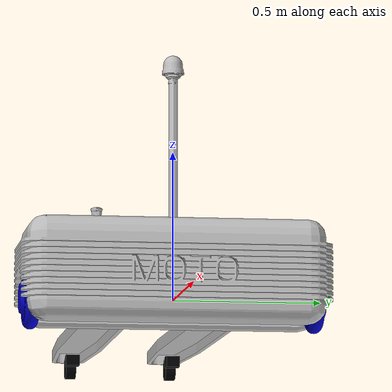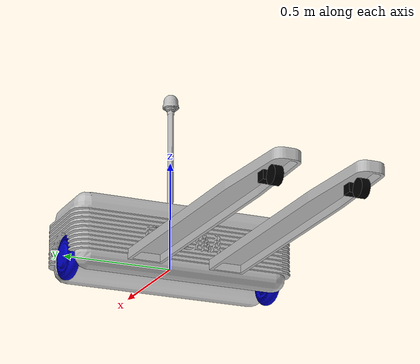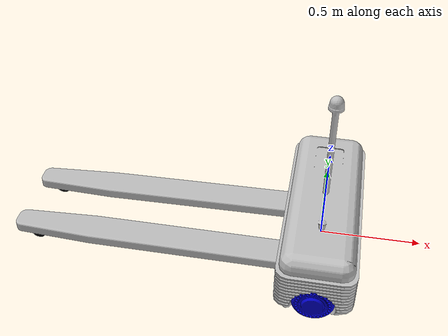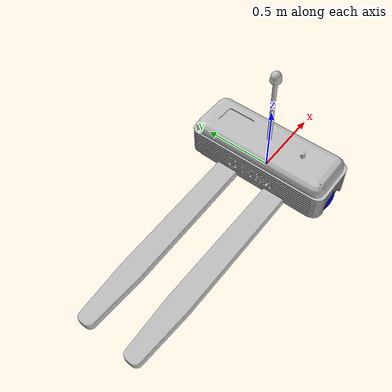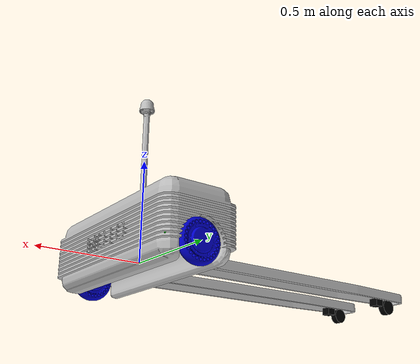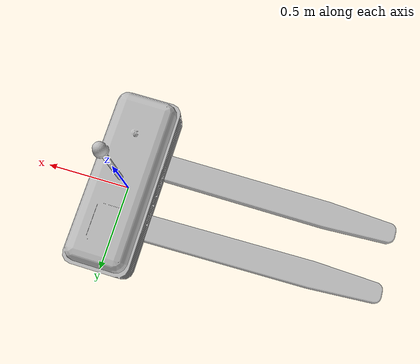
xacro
<?xml version="1.0"?>
<robot name="amr" xmlns:xacro="http://www.ros.org/wiki/xacro">

    <!-- Wheels property -->
    <xacro:property name="cwm" value="0.5" />                                   <!-- cwm: caster wheel mass,     [kg] -->
    <xacro:property name="cwd" value="0.080" />                                 <!-- cwd: caster wheel diameter, [m]  -->
    <xacro:property name="cwr" value="${cwd/2}" />                              <!-- cwr: caster wheel radius,   [m]  -->
    <xacro:property name="cwo" value="0.080" />                                 <!-- cwo: caster wheel offset,   [m]  default value: 0.047-->
    <xacro:property name="cwt" value="0.037" />                                 <!-- cwt: caster wheel tread,    [m]  -->
    <xacro:property name="cwh" value="${cwd}" />                                 <!-- cwt: caster wheel height,   [m]  -->
    <xacro:property name="mu1" value="10000" />                                 <!-- mu1: static friction coefficient,   [/]  -->
    <xacro:property name="mu2" value="10000" />                                 <!-- mu1: dynamic friction coefficient,   [/]  -->
    <xacro:property name="kp" value="10" />                                     <!-- kp: stiffness coefficient,   [N/m?]  -->
    <xacro:property name="kd" value="10" />                                     <!-- kp: stiffness coefficient,   [N/m?]  -->

    <xacro:property name="mu3" value="10" />                                    <!-- mu1: static friction coefficient,   [/]  -->
    <xacro:property name="mu4" value="10" />                                    <!-- mu1: dynamic friction coefficient,   [/]  -->
    <xacro:property name="kp2" value="10000" />                                 <!-- kp: stiffness coefficient,   [N/m?]  -->
    <xacro:property name="kd2" value="10000" />                                 <!-- kp: stiffness coefficient,   [N/m?]  -->

    <xacro:property name="cw_ixx" value="${(cwm/12.0)*(3*cwr*cwr+cwt*cwt)}" />  <!-- cw_ixx: caster wheel inertia x axis, [kgm^2]  -->
    <xacro:property name="cw_iyy" value="${cw_ixx}" />                          <!-- cw_iyy: caster wheel inertia y axis, [kgm^2]  -->
    <xacro:property name="cw_izz" value="${(cwm*cwr*cwr)/2.0}" />               <!-- cw_izz: caster wheel inertia z axis, [kgm^2]  -->

    <xacro:property name="dwm" value="0.6" />                                   <!-- dwm: driving wheel mass, [kg] -->
    <xacro:property name="dwd" value="0.200" />                                 <!-- dwd: driving wheel diameter, [m]  -->
    <xacro:property name="dwr" value="${dwd/2}" />                              <!-- dwr: driving wheel radius, [m]  -->
    <xacro:property name="dwt" value="0.044" />                                 <!-- dwt: driving wheel tread, [m]  -->

    <xacro:property name="dw_ixx" value="${(dwm/12.0)*(3*dwr*dwr+dwt*dwt)}" />  <!-- dw_ixx: driving wheel inertia x axis, [kgm^2]  -->
    <xacro:property name="dw_iyy" value="${dw_ixx}" />                          <!-- dw_iyy: driving wheel inertia y axis, [kgm^2]  -->
    <xacro:property name="dw_izz" value="${(dwm*dwr*dwr)/2.0}" />               <!-- dw_izz: driving wheel inertia z axis, [kgm^2]  -->

    <!-- chassis property -->
    <xacro:property name="cm" value="70.0" />                                   <!-- cm: chassis mass,                       [kg] -->
    <xacro:property name="clod" value="0.350" />                                <!-- clod: chassis longitudinal dimension,   [m] -->
    <xacro:property name="clad" value="1.00" />                                <!-- clad: chassis lateral dimension,        [m] -->
    <xacro:property name="ch" value="0.050" />                                  <!-- ch: chassis height,                     [m] -->
    <xacro:property name="ccmp" value="0.1" />                                  <!-- ch: chassis center of mass position,  [m] -->

    <xacro:property name="c_ixx" value="${(cm/12.0)*(clad*clad+ch*ch)}" />      <!-- c_ixx: chassis inertia x axis, [kgm^2]  -->
    <xacro:property name="c_iyy" value="${(cm/12.0)*(clod*clod+ch*ch)}" />      <!-- c_iyy: chassis inertia y axis, [kgm^2]  -->
    <xacro:property name="c_izz" value="${(cm/12.0)*(clod*clod+clad*clad)}" />  <!-- c_izz: chassis inertia z axis, [kgm^2]  -->

    <!-- caster_wheel_link property -->
    <xacro:property name="cwlm" value="0.050" />                                  <!-- cwlm: caster wheel link mass,      [kg] -->
    <xacro:property name="cwlh" value="${(cwh-cwr)}" />                           <!-- cwlh: caster wheel link height,    [m]  -->
    <xacro:property name="cfwp" value="-1.4" />                                    <!-- cfwp: caster front wheel position, [m]  -->

    <!-- forks_link property -->
    <xacro:property name="flm" value="10" />                                  <!-- flm:  fork link mass, [kg] -->
    <xacro:property name="flod" value="1.2" />                                <!-- flod: fork longitudinal dimension,   [m] -->
    <xacro:property name="flad" value="0.160" />                              <!-- flad: fork lateral dimension,        [m] -->
    <xacro:property name="fh" value="0.040" />                                <!-- fh: fork height,                     [m] -->
    <xacro:property name="fup" value="0.120" />                               <!-- fup: fork upper position,            [m] -->
    <xacro:property name="flp" value="0.0" />                                 <!-- flp: fork lower position,            [m] -->
    <xacro:property name="ftr" value="1.0" />                                 <!-- ftr: fork trasmission reduction,     [/] -->
    <xacro:property name="fev" value="0.05" />                                <!-- ftr: fork elevation velocity         [m/s] -->

    <xacro:property name="f_ixx" value="${(flm/12.0)*(flad*flad+ch*fh)}" />      <!-- f_ixx: fork inertia x axis, [kgm^2]  -->
    <xacro:property name="f_iyy" value="${(flm/12.0)*(flod*flod+ch*fh)}" />      <!-- f_iyy: fork inertia y axis, [kgm^2]  -->
    <xacro:property name="f_izz" value="${(flm/12.0)*(flod*flod+flad*flad)}" />  <!-- f_izz: fork inertia z axis, [kgm^2]  -->

    <!-- laserscanner_link property -->
    <xacro:property name="flsh" value="0" />                                <!-- flsh: front laserscanner height,   [m] -->

    <xacro:macro name="caster_wheel_link" params="number colour">

        <link name="caster_wheel_M${number}_link">

            <visual>
                <origin xyz="0 0 0" rpy="0 0 0"/>
                <geometry>
                    <box size="0.050 0.050 ${cwlh}"/>
                </geometry>
                <material name="black"/>
            </visual>

            <collision>
                <origin xyz="0 0 0" rpy="0 0 0"/>
                <geometry>
                    <box size="0.050 0.050 ${cwlh}"/>
                </geometry>
            </collision>

            <inertial>
                <origin xyz="0 0 0" rpy="0 0 0"/>
                <mass value="${cwlm}" />
                <inertia ixx="0" ixy="0.0" ixz="0.0" iyy="0" iyz="0.0" izz="0"/>
            </inertial>

        </link>

        <gazebo reference="caster_wheel_M${number}_link">
            <kp>10000.0</kp>
            <kd>10000.0</kd>
            <mu1>10.0</mu1>
            <mu2>10.0</mu2>
            <material>Gazebo/Black</material>
        </gazebo>

        <link name="wheel_M${number}_link">

            <visual>
                <origin xyz="0 0 0" rpy="0 0 0"/>
                <geometry>
                    <cylinder length="${cwt}" radius="${cwr}"/>
                </geometry>
                <material name="black"/>
            </visual>

            <collision>
                <origin xyz="0 0 0" rpy="0 0 0"/>
                <geometry>
                    <cylinder length="${cwt}" radius="${cwr}"/>
                </geometry>
            </collision>

            <inertial>
                <origin xyz="0 0 0" rpy="0 0 0"/>
                <mass value="${cwm}" />
                <inertia ixx="${cw_ixx}" ixy="0.0" ixz="0.0" iyy="${cw_iyy}" iyz="0.0" izz="${cw_izz}"/>
            </inertial>

        </link>

        <gazebo reference="wheel_M${number}_link">
            <kp>5000.0</kp>
            <kd>5000.0</kd>
            <mu1>30.0</mu1>
            <mu2>30.0</mu2>
            <material>Gazebo/Black</material>
        </gazebo>

        <joint name="caster_wheel_M${number}_wheel_M${number}_joint" type="continuous">
            <parent link="caster_wheel_M${number}_link"/>
            <child link="wheel_M${number}_link"/>
            <origin xyz="${cwo} 0 ${-cwlh/2}" rpy="1.570796 0 0"/>
            <limit  effort="1.0" velocity="0.005"/>
            <axis xyz="0 0 1"/>
        </joint>

    </xacro:macro>

    <xacro:macro name="driving_wheel_link" params="number colour">

        <link name="driving_wheel_M${number}_link">

            <visual>
                <origin xyz="0 0 0" rpy="0 0 0"/>
                <geometry>
                    <mesh filename="package://amr_description/models/meshes/amr_wheel.dae"/>
                </geometry>
                <material name="blue"/>
            </visual>

            <collision>
                <origin xyz="0 0 0" rpy="0 0 0"/>
                <geometry>
                    <cylinder length="${dwt}" radius="${dwr}"/>
                </geometry>
            </collision>

            <inertial>
                <origin xyz="0 0 0" rpy="0 0 0"/>
                <mass value="${dwm}" />
                <inertia ixx="${dw_ixx}" ixy="0.0" ixz="0.0" iyy="${dw_iyy}" iyz="0.0" izz="${dw_izz}"/>
            </inertial>

        </link>

        <gazebo reference="driving_wheel_M${number}_link">
            <kp>25000.0</kp>
            <kd>25000.0</kd>
            <mu1>10.0</mu1>
            <mu2>10.0</mu2>
        </gazebo>

    </xacro:macro>

    <material name="blue">
        <color rgba="0 0 0.8 1"/>
    </material>
    <material name="red">
        <color rgba="0.8 0 0 1"/>
    </material>
    <material name="green">
        <color rgba="0 0.8 0 1"/>
    </material>
    <material name="grey">
        <color rgba="0.75 0.75 0.75 1"/>
    </material>
    <material name="white">
        <color rgba="1.0 1.0 1.0 1"/>
    </material>
    <material name="black">
        <color rgba="0 0 0 1"/>
    </material>

    <!-- * * * Link Definitions * * * -->
    <link name="base_footprint"/>

    <joint name="base_joint" type="fixed">
      <origin xyz="0 0 0" rpy="0 0 0" />
      <parent link="base_footprint"/>
      <child link="base_link" />
    </joint>

    <gazebo reference="base_footprint">
        <kp>10000.0</kp>
        <kd>10000.0</kd>
        <mu1>10.0</mu1>
        <mu2>10.0</mu2>
    </gazebo>

    <link name="base_link">  <!-- remember you to spit in the base_link and the body_link -->

        <visual>
            <origin xyz="0 0 0" rpy="0 0 0"/>
            <geometry>
                <mesh filename="package://amr_description/models/meshes/amr_blender.dae"/>
             </geometry>
            <material name="grey"/>
        </visual>

        <collision>
            <origin xyz="0 0 0" rpy="0 0 0"/>
            <geometry>
                 <box size="${clod} ${clad} ${ch}"/>
            </geometry>
        </collision>

        <inertial>
            <origin xyz="0 0 0" rpy="0 0 0"/>     <!-- default: xyz="0 0 0" rpy="0 0 0" -->
            <mass value="${cm}"/>
            <inertia ixx="${c_ixx}" ixy="0.0" ixz="0.0" iyy="${c_iyy}" iyz="0.0" izz="${c_izz}"/>
        </inertial>

    </link>

    <gazebo reference="base_link">
        <kp>10000.0</kp>
        <kd>10000.0</kd>
        <mu1>10.0</mu1>
        <mu2>10.0</mu2>
    </gazebo>

    <link name="elevator_sx_link">

        <visual>
            <origin xyz="0.065 0 0" rpy="0 0 3.15926"/>
            <geometry>
                 <mesh filename="package://amr_description/models/meshes/amr_fork.dae"/>
            </geometry>
            <material name="grey"/>
        </visual>

        <collision>
            <origin xyz="0 0 0" rpy="0 0 0"/>
            <geometry>
                 <box size="${flod} ${flad/2} ${fh}"/>
            </geometry>
        </collision>

        <inertial>
            <origin xyz="0 0 0" rpy="0 0 0"/>     <!-- default: xyz="0 0 0" rpy="0 0 0" -->
            <mass value="${flm}"/>
            <inertia ixx="${f_ixx}" ixy="0.0" ixz="0.0" iyy="${f_iyy}" iyz="0.0" izz="${f_izz}"/>
        </inertial>

    </link>

    <gazebo reference="elevator_sx_link">
        <kp>10000.0</kp>
        <kd>10000.0</kd>
        <mu1>10.0</mu1>
        <mu2>10.0</mu2>
    </gazebo>

    <gazebo>
        <plugin name="gazebo_ros_control" filename="libgazebo_ros_control.so">
            <robotNamespace>/amr</robotNamespace>
        </plugin>
    </gazebo>

   <joint name="base_link_elevator_sx_link_joint" type="prismatic">
        <parent link="base_link"/>
        <child link="elevator_sx_link"/>
        <origin rpy="0 0 0" xyz="-0.85 0.186 -0.040"/>
        <limit effort="1000.0" lower="${flp}" upper="${fup}" velocity="${fev}"/>
        <axis xyz="0 0 1"/>
   </joint>

    <transmission name="tran1">
        <type>transmission_interface/SimpleTransmission</type>
        <joint name="base_link_elevator_sx_link_joint">
            <hardwareInterface>hardware_interface/EffortJointInterface</hardwareInterface>
        </joint>
        <actuator name="motor1">
            <hardwareInterface>hardware_interface/EffortJointInterface</hardwareInterface>
            <mechanicalReduction>${ftr}</mechanicalReduction>
        </actuator>
    </transmission>

     <link name="elevator_dx_link">

        <visual>
            <origin xyz="0.065 0 0" rpy="0 0 3.1415926"/>
            <geometry>
                <mesh filename="package://amr_description/models/meshes/amr_fork.dae"/>
            </geometry>
            <material name="grey"/>
        </visual>

        <collision>
            <origin xyz="0 0 0" rpy="0 0 0"/>
            <geometry>
                 <box size="${flod} ${flad/2} ${fh}"/>
            </geometry>
        </collision>

        <inertial>
            <origin xyz="0 0 0" rpy="0 0 0"/>     <!-- default: xyz="0 0 0" rpy="0 0 0" -->
            <mass value="${flm}"/>
            <inertia ixx="${f_ixx}" ixy="0.0" ixz="0.0" iyy="${f_iyy}" iyz="0.0" izz="${f_izz}"/>
        </inertial>

    </link>

    <gazebo reference="elevator_dx_link">
        <kp>10000.0</kp>
        <kd>10000.0</kd>
        <mu1>10.0</mu1>
        <mu2>10.0</mu2>
    </gazebo>

   <joint name="base_link_elevator_dx_link_joint" type="prismatic">
        <parent link="base_link"/>
        <child link="elevator_dx_link"/>
        <origin rpy="0 0 0" xyz="-0.85 -0.186 -0.040"/>
        <limit effort="1000.0" lower="${flp}" upper="${fup}" velocity="${fev}"/>
        <axis xyz="0 0 1"/>
   </joint>

    <transmission name="tran2">
        <type>transmission_interface/SimpleTransmission</type>
        <joint name="base_link_elevator_dx_link_joint">
            <hardwareInterface>hardware_interface/EffortJointInterface</hardwareInterface>
        </joint>
        <actuator name="motor2">
            <hardwareInterface>hardware_interface/EffortJointInterface</hardwareInterface>
            <mechanicalReduction>${ftr}</mechanicalReduction>
        </actuator>
    </transmission>

    <xacro:caster_wheel_link number="1" colour="Red"/>
    <xacro:caster_wheel_link number="2" colour="Red"/>

    <joint name="base_link_caster_wheel_M1_joint" type="continuous">
    	<parent link="base_link"/>
    	<child link="caster_wheel_M1_link"/>
        <origin xyz="${cfwp} 0.186 ${-ch}" rpy="0 0 3.1415926"/>  <!-- xyz="${-clod/2} ${clad/2} ${-ch}" rpy="0 0 0" -->
        <limit effort="1.0" velocity="1"/>
        <axis xyz="0 0 1"/>
	</joint>

    <joint name="base_link_caster_wheel_M2_joint" type="continuous">
    	<parent link="base_link"/>
    	<child link="caster_wheel_M2_link"/>
        <origin xyz="${cfwp} -0.186 ${-ch}" rpy="0 0 3.1415926"/> <!-- xyz="${-clod/2} ${clad/2} ${-ch}" rpy="0 0 0" -->
        <limit effort="1.0" velocity="1"/>
        <axis xyz="0 0 1"/>
	</joint>

    <!-- * * * driving_wheel_links * * * -->
    <xacro:driving_wheel_link number="1" colour="Blue" />
    <xacro:driving_wheel_link number="2" colour="Blue"/>

    <joint name="base_link_driving_wheel_M1_joint" type="continuous">
    	<parent link="base_link"/>
    	<child link="driving_wheel_M1_link"/>
        <origin xyz="0 ${-clad/2+dwt/2} ${0}" rpy="1.57 0 0"/>
        <limit effort="15.0" velocity="0.1"/>
        <axis xyz="0 0 -1"/>
	</joint>

    <joint name="base_link_driving_wheel_M2_joint" type="continuous">
    	<parent link="base_link"/>
    	<child link="driving_wheel_M2_link"/>
        <origin xyz="0 ${clad/2-dwt/2} ${0}" rpy="1.57 0 0"/>
        <limit effort="15.0" velocity="0.1"/>
        <axis xyz="0 0 -1"/>
	</joint>

    <gazebo>
        <plugin name="differential_drive_controller" filename="libgazebo_ros_diff_drive.so">

            <alwaysOn>true</alwaysOn>
            <updateRate>50</updateRate>
            <leftJoint>base_link_driving_wheel_M2_joint</leftJoint>
            <rightJoint>base_link_driving_wheel_M1_joint</rightJoint>
            <wheelSeparation>${clad+dwt}</wheelSeparation>
            <wheelDiameter>${dwd}</wheelDiameter>
            <wheelAcceleration>0.1</wheelAcceleration>
            <wheelTorque>30</wheelTorque>
            <commandTopic>cmd_vel</commandTopic>
            <odometryTopic>odom</odometryTopic>
            <odometryFrame>odom</odometryFrame>
            <robotBaseFrame>base_footprint</robotBaseFrame>
            <publishWheelTF>true</publishWheelTF>
            <publishOdom>true</publishOdom>
            <robotBaseFrame>base_link</robotBaseFrame>
            <publishWheelJointState>true</publishWheelJointState>
            <legacyMode>false</legacyMode>
            <rosDebugLevel>false</rosDebugLevel>
            <publishOdomTF>true</publishOdomTF>
            <odometrySource>world</odometrySource>
            <publishTf>1</publishTf>
        </plugin>
    </gazebo>

    <!-- ############# start Laser Sensors ############ -->

     <!-- Sensor Laser in the front -->

    <link name="front_laserscanner_link">

        <visual>
            <origin rpy="0.0 0 0" xyz="0 0 0"/>
            <geometry>
                <box size="0.005 0.005 0.005"/>
            </geometry>
            <material name="green"/>
        </visual>

        <collision>
            <origin rpy="0.0 0 0" xyz="0 0 0"/>
            <geometry>
                <box size="0.005 0.005 0.005"/>
            </geometry>
        </collision>

        <inertial>
            <mass value="1e-5" />
            <origin xyz="0 0 0" rpy="0 0 0"/>
            <inertia ixx="1e-6" ixy="0" ixz="0" iyy="1e-6" iyz="0" izz="1e-6" />
        </inertial>

    </link>

    <joint name="base_front_laserscanner_joint" type="fixed">
        <axis xyz="0 1 0" />
        <parent link="base_link"/>
        <child link="front_laserscanner_link"/>
        <origin xyz="${clod/2} ${clad/2} ${flsh}" rpy="0 0 -1.57"/>
    </joint>

    <gazebo reference="front_laserscanner_link">
        <sensor type="ray" name="front_rplidar_sensor">
            <pose>0 0 0 0 0 0</pose>
            <visualize>false</visualize>
            <update_rate>40</update_rate>
            <ray>
                <scan>
                    <horizontal>
                        <samples>720</samples>
                        <resolution>1</resolution>
                        <min_angle>0</min_angle>
                        <max_angle>3.1415926</max_angle>
                    </horizontal>
                </scan>
                <range>
                    <min>0.10</min>
                    <max>30.0</max>
                    <resolution>0.01</resolution>
                </range>
                <noise>
                    <type>gaussian</type>
                    <mean>0.0</mean>
                    <stddev>0.01</stddev>
                </noise>
            </ray>
            <plugin name="gazebo_ros_head_hokuyo_controller" filename="libgazebo_ros_laser.so">
                <topicName>front_scan</topicName>
                <frameName>front_laserscanner_link</frameName>
            </plugin>
        </sensor>
    </gazebo>

    <!-- Sensor Laser in the back -->

    <link name="rear_laserscanner_link">

        <visual>
            <origin rpy="0.0 0 0" xyz="0 0 0"/>
            <geometry>
                <box size="0.0005 0.0005 0.0005"/>
            </geometry>
            <material name="green"/>
        </visual>

        <collision>
            <origin rpy="0.0 0 0" xyz="0 0 0"/>
            <geometry>
                <box size="0.0005 0.0005 0.0005"/>
            </geometry>
        </collision>

        <inertial>
            <mass value="1e-5" />
            <origin xyz="0 0 0" rpy="0 0 0"/>
            <inertia ixx="1e-6" ixy="0" ixz="0" iyy="1e-6" iyz="0" izz="1e-6" />
        </inertial>

    </link>

    <joint name="base_rear_laserscanner_joint" type="fixed">
        <parent link="base_link"/>
        <child link="rear_laserscanner_link"/>
        <origin xyz="${-clod/2} 0 ${flsh}" rpy="0 0 0"/>
    </joint>

    <gazebo reference="rear_laserscanner_link">
        <sensor type="ray" name="rear_rplidar_sensor">
            <pose>0 0 0 0 0 0</pose>
            <visualize>true</visualize>
            <update_rate>40</update_rate>
            <ray>
                <scan>
                    <horizontal>
                        <samples>720</samples>
                        <resolution>1</resolution>
                        <min_angle>-3.490655</min_angle>
                        <max_angle>-2.792525</max_angle>
                    </horizontal>
                </scan>
                <range>
                    <min>0.10</min>
                    <max>5.0</max>
                    <resolution>0.01</resolution>
                </range>
                <noise>
                    <type>gaussian</type>
                    <mean>0.0</mean>
                    <stddev>0.01</stddev>
                </noise>
            </ray>
            <plugin name="gazebo_ros_head_hokuyo_controller" filename="libgazebo_ros_laser.so">
                <topicName>rear_scan</topicName>
                <frameName>rear_laserscanner_link</frameName>
            </plugin>
        </sensor>
    </gazebo>

</robot>
